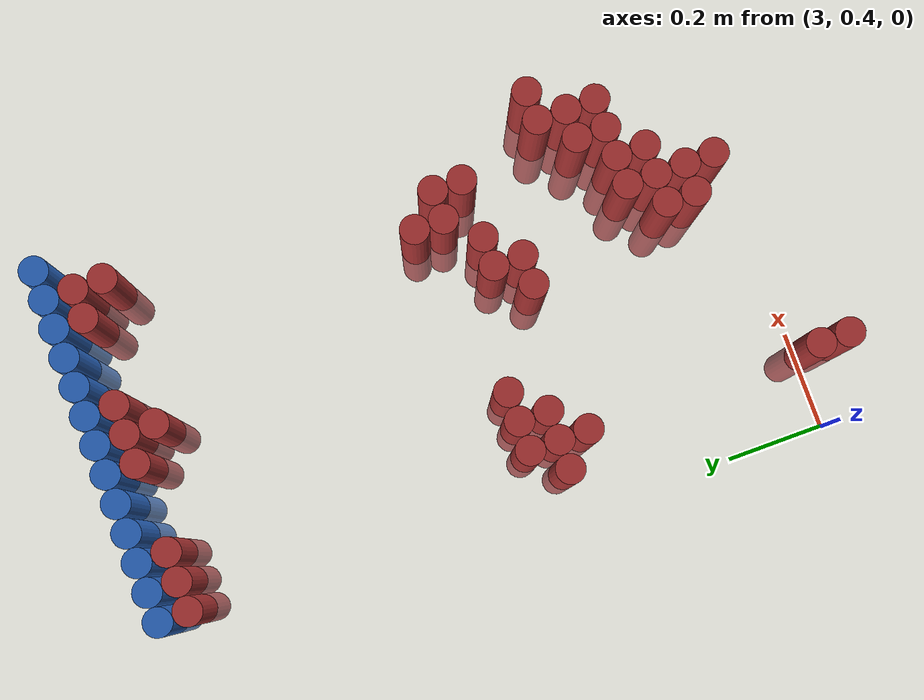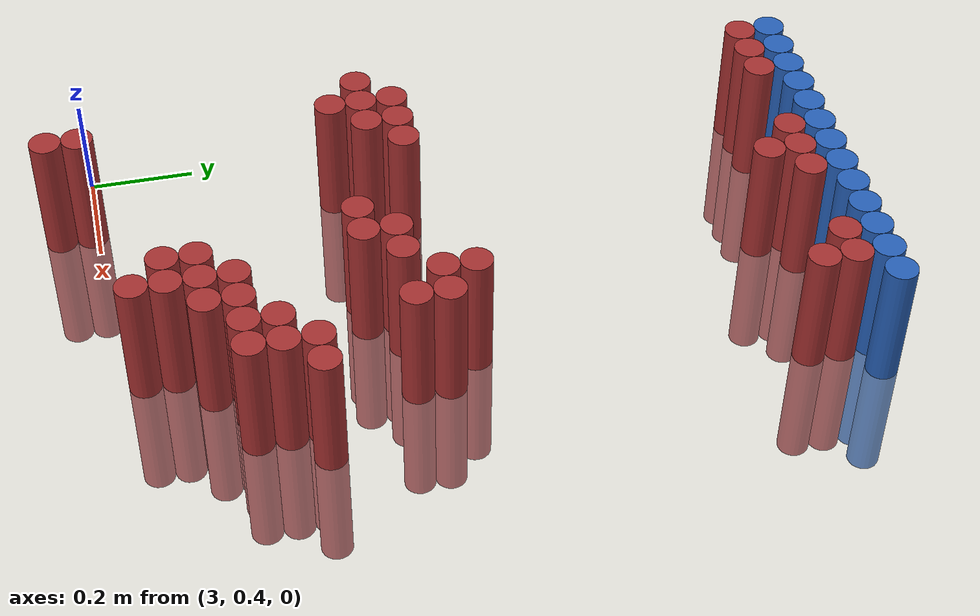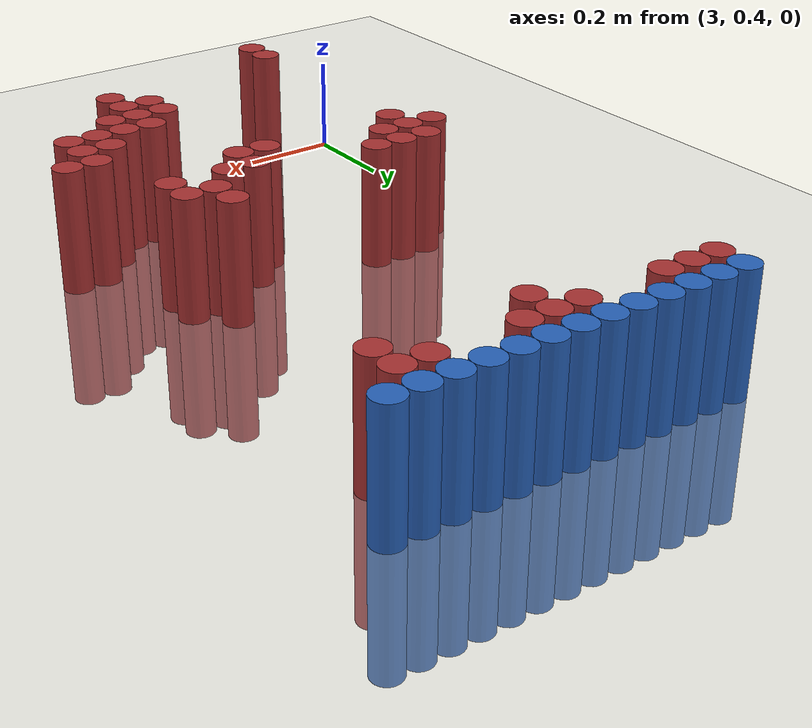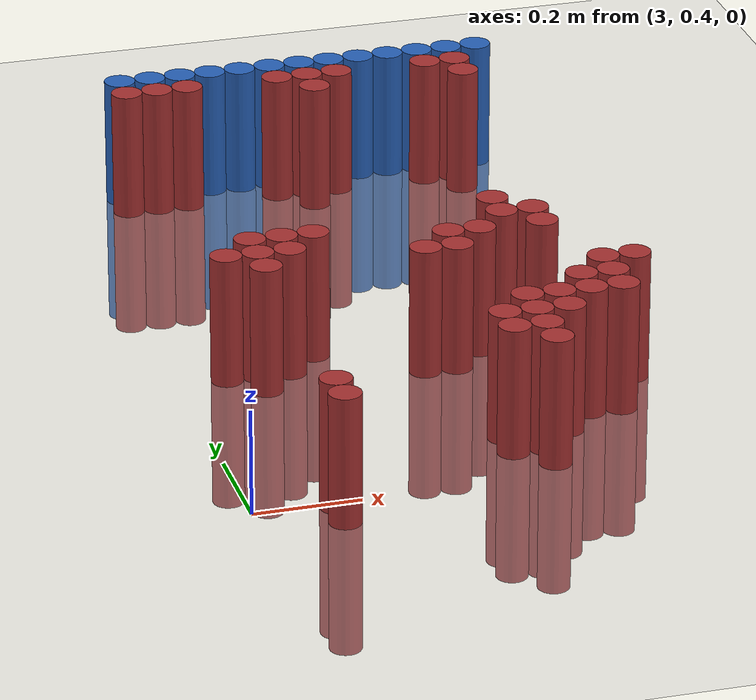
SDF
<sdf version="1.6">
 <world name="default">
  <model name="ground_plane">
   <static>1</static>
   <link name="link">
    <collision name="collision">
     <geometry><plane><normal>0 0 1</normal><size>100 100</size></plane></geometry>
     <surface><friction><ode><mu>100</mu><mu2>50</mu2></ode></friction></surface>
    </collision>
    <visual name="visual">
     <cast_shadows>0</cast_shadows>
     <geometry><plane><normal>0 0 1</normal><size>100 100</size></plane></geometry>
     <material>
      <script><uri>file://media/materials/scripts/gazebo.material</uri><name>Gazebo/Grey</name></script>
     </material>
    </visual>
   </link>
  </model>
  <model name="unit_cylinder_112">
   <static>1</static>
   <pose>3.090000 1.770000 0.000000 0.000000 0.000000 0.000000</pose>
   <link name="link">
    <inertial>
     <mass>1</mass>
     <inertia><ixx>0.145833</ixx><ixy>0</ixy><ixz>0</ixz><iyy>0.145833</iyy><iyz>0</iyz><izz>0.125</izz></inertia>
    </inertial>
    <collision name="collision">
     <geometry><cylinder><radius>0.030000</radius><length>0.5</length></cylinder></geometry>
    </collision>
    <visual name="visual">
     <geometry><cylinder><radius>0.030000</radius><length>0.5</length></cylinder></geometry>
     <material>
      <ambient>0.152000 0.379000 0.720000 1</ambient>
      <diffuse>0.152000 0.379000 0.720000 1</diffuse>
     </material>
     <material>
      <script><name>Gazebo/Grey</name><uri>file://media/materials/scripts/gazebo.material</uri></script>
     </material>
    </visual>
   </link>
  </model>
  <model name="unit_cylinder_113">
   <static>1</static>
   <pose>3.150000 1.770000 0.000000 0.000000 0.000000 0.000000</pose>
   <link name="link">
    <inertial>
     <mass>1</mass>
     <inertia><ixx>0.145833</ixx><ixy>0</ixy><ixz>0</ixz><iyy>0.145833</iyy><iyz>0</iyz><izz>0.125</izz></inertia>
    </inertial>
    <collision name="collision">
     <geometry><cylinder><radius>0.030000</radius><length>0.5</length></cylinder></geometry>
    </collision>
    <visual name="visual">
     <geometry><cylinder><radius>0.030000</radius><length>0.5</length></cylinder></geometry>
     <material>
      <ambient>0.152000 0.379000 0.720000 1</ambient>
      <diffuse>0.152000 0.379000 0.720000 1</diffuse>
     </material>
     <material>
      <script><name>Gazebo/Grey</name><uri>file://media/materials/scripts/gazebo.material</uri></script>
     </material>
    </visual>
   </link>
  </model>
  <model name="unit_cylinder_114">
   <static>1</static>
   <pose>3.210000 1.770000 0.000000 0.000000 0.000000 0.000000</pose>
   <link name="link">
    <inertial>
     <mass>1</mass>
     <inertia><ixx>0.145833</ixx><ixy>0</ixy><ixz>0</ixz><iyy>0.145833</iyy><iyz>0</iyz><izz>0.125</izz></inertia>
    </inertial>
    <collision name="collision">
     <geometry><cylinder><radius>0.030000</radius><length>0.5</length></cylinder></geometry>
    </collision>
    <visual name="visual">
     <geometry><cylinder><radius>0.030000</radius><length>0.5</length></cylinder></geometry>
     <material>
      <ambient>0.152000 0.379000 0.720000 1</ambient>
      <diffuse>0.152000 0.379000 0.720000 1</diffuse>
     </material>
     <material>
      <script><name>Gazebo/Grey</name><uri>file://media/materials/scripts/gazebo.material</uri></script>
     </material>
    </visual>
   </link>
  </model>
  <model name="unit_cylinder_115">
   <static>1</static>
   <pose>3.270000 1.770000 0.000000 0.000000 0.000000 0.000000</pose>
   <link name="link">
    <inertial>
     <mass>1</mass>
     <inertia><ixx>0.145833</ixx><ixy>0</ixy><ixz>0</ixz><iyy>0.145833</iyy><iyz>0</iyz><izz>0.125</izz></inertia>
    </inertial>
    <collision name="collision">
     <geometry><cylinder><radius>0.030000</radius><length>0.5</length></cylinder></geometry>
    </collision>
    <visual name="visual">
     <geometry><cylinder><radius>0.030000</radius><length>0.5</length></cylinder></geometry>
     <material>
      <ambient>0.152000 0.379000 0.720000 1</ambient>
      <diffuse>0.152000 0.379000 0.720000 1</diffuse>
     </material>
     <material>
      <script><name>Gazebo/Grey</name><uri>file://media/materials/scripts/gazebo.material</uri></script>
     </material>
    </visual>
   </link>
  </model>
  <model name="unit_cylinder_116">
   <static>1</static>
   <pose>3.330000 1.770000 0.000000 0.000000 0.000000 0.000000</pose>
   <link name="link">
    <inertial>
     <mass>1</mass>
     <inertia><ixx>0.145833</ixx><ixy>0</ixy><ixz>0</ixz><iyy>0.145833</iyy><iyz>0</iyz><izz>0.125</izz></inertia>
    </inertial>
    <collision name="collision">
     <geometry><cylinder><radius>0.030000</radius><length>0.5</length></cylinder></geometry>
    </collision>
    <visual name="visual">
     <geometry><cylinder><radius>0.030000</radius><length>0.5</length></cylinder></geometry>
     <material>
      <ambient>0.152000 0.379000 0.720000 1</ambient>
      <diffuse>0.152000 0.379000 0.720000 1</diffuse>
     </material>
     <material>
      <script><name>Gazebo/Grey</name><uri>file://media/materials/scripts/gazebo.material</uri></script>
     </material>
    </visual>
   </link>
  </model>
  <model name="unit_cylinder_117">
   <static>1</static>
   <pose>3.390000 1.770000 0.000000 0.000000 0.000000 0.000000</pose>
   <link name="link">
    <inertial>
     <mass>1</mass>
     <inertia><ixx>0.145833</ixx><ixy>0</ixy><ixz>0</ixz><iyy>0.145833</iyy><iyz>0</iyz><izz>0.125</izz></inertia>
    </inertial>
    <collision name="collision">
     <geometry><cylinder><radius>0.030000</radius><length>0.5</length></cylinder></geometry>
    </collision>
    <visual name="visual">
     <geometry><cylinder><radius>0.030000</radius><length>0.5</length></cylinder></geometry>
     <material>
      <ambient>0.152000 0.379000 0.720000 1</ambient>
      <diffuse>0.152000 0.379000 0.720000 1</diffuse>
     </material>
     <material>
      <script><name>Gazebo/Grey</name><uri>file://media/materials/scripts/gazebo.material</uri></script>
     </material>
    </visual>
   </link>
  </model>
  <model name="unit_cylinder_118">
   <static>1</static>
   <pose>3.450000 1.770000 0.000000 0.000000 0.000000 0.000000</pose>
   <link name="link">
    <inertial>
     <mass>1</mass>
     <inertia><ixx>0.145833</ixx><ixy>0</ixy><ixz>0</ixz><iyy>0.145833</iyy><iyz>0</iyz><izz>0.125</izz></inertia>
    </inertial>
    <collision name="collision">
     <geometry><cylinder><radius>0.030000</radius><length>0.5</length></cylinder></geometry>
    </collision>
    <visual name="visual">
     <geometry><cylinder><radius>0.030000</radius><length>0.5</length></cylinder></geometry>
     <material>
      <ambient>0.152000 0.379000 0.720000 1</ambient>
      <diffuse>0.152000 0.379000 0.720000 1</diffuse>
     </material>
     <material>
      <script><name>Gazebo/Grey</name><uri>file://media/materials/scripts/gazebo.material</uri></script>
     </material>
    </visual>
   </link>
  </model>
  <model name="unit_cylinder_119">
   <static>1</static>
   <pose>3.510000 1.770000 0.000000 0.000000 0.000000 0.000000</pose>
   <link name="link">
    <inertial>
     <mass>1</mass>
     <inertia><ixx>0.145833</ixx><ixy>0</ixy><ixz>0</ixz><iyy>0.145833</iyy><iyz>0</iyz><izz>0.125</izz></inertia>
    </inertial>
    <collision name="collision">
     <geometry><cylinder><radius>0.030000</radius><length>0.5</length></cylinder></geometry>
    </collision>
    <visual name="visual">
     <geometry><cylinder><radius>0.030000</radius><length>0.5</length></cylinder></geometry>
     <material>
      <ambient>0.152000 0.379000 0.720000 1</ambient>
      <diffuse>0.152000 0.379000 0.720000 1</diffuse>
     </material>
     <material>
      <script><name>Gazebo/Grey</name><uri>file://media/materials/scripts/gazebo.material</uri></script>
     </material>
    </visual>
   </link>
  </model>
  <model name="unit_cylinder_120">
   <static>1</static>
   <pose>3.570000 1.770000 0.000000 0.000000 0.000000 0.000000</pose>
   <link name="link">
    <inertial>
     <mass>1</mass>
     <inertia><ixx>0.145833</ixx><ixy>0</ixy><ixz>0</ixz><iyy>0.145833</iyy><iyz>0</iyz><izz>0.125</izz></inertia>
    </inertial>
    <collision name="collision">
     <geometry><cylinder><radius>0.030000</radius><length>0.5</length></cylinder></geometry>
    </collision>
    <visual name="visual">
     <geometry><cylinder><radius>0.030000</radius><length>0.5</length></cylinder></geometry>
     <material>
      <ambient>0.152000 0.379000 0.720000 1</ambient>
      <diffuse>0.152000 0.379000 0.720000 1</diffuse>
     </material>
     <material>
      <script><name>Gazebo/Grey</name><uri>file://media/materials/scripts/gazebo.material</uri></script>
     </material>
    </visual>
   </link>
  </model>
  <model name="unit_cylinder_121">
   <static>1</static>
   <pose>3.630000 1.770000 0.000000 0.000000 0.000000 0.000000</pose>
   <link name="link">
    <inertial>
     <mass>1</mass>
     <inertia><ixx>0.145833</ixx><ixy>0</ixy><ixz>0</ixz><iyy>0.145833</iyy><iyz>0</iyz><izz>0.125</izz></inertia>
    </inertial>
    <collision name="collision">
     <geometry><cylinder><radius>0.030000</radius><length>0.5</length></cylinder></geometry>
    </collision>
    <visual name="visual">
     <geometry><cylinder><radius>0.030000</radius><length>0.5</length></cylinder></geometry>
     <material>
      <ambient>0.152000 0.379000 0.720000 1</ambient>
      <diffuse>0.152000 0.379000 0.720000 1</diffuse>
     </material>
     <material>
      <script><name>Gazebo/Grey</name><uri>file://media/materials/scripts/gazebo.material</uri></script>
     </material>
    </visual>
   </link>
  </model>
  <model name="unit_cylinder_122">
   <static>1</static>
   <pose>3.690000 1.770000 0.000000 0.000000 0.000000 0.000000</pose>
   <link name="link">
    <inertial>
     <mass>1</mass>
     <inertia><ixx>0.145833</ixx><ixy>0</ixy><ixz>0</ixz><iyy>0.145833</iyy><iyz>0</iyz><izz>0.125</izz></inertia>
    </inertial>
    <collision name="collision">
     <geometry><cylinder><radius>0.030000</radius><length>0.5</length></cylinder></geometry>
    </collision>
    <visual name="visual">
     <geometry><cylinder><radius>0.030000</radius><length>0.5</length></cylinder></geometry>
     <material>
      <ambient>0.152000 0.379000 0.720000 1</ambient>
      <diffuse>0.152000 0.379000 0.720000 1</diffuse>
     </material>
     <material>
      <script><name>Gazebo/Grey</name><uri>file://media/materials/scripts/gazebo.material</uri></script>
     </material>
    </visual>
   </link>
  </model>
  <model name="unit_cylinder_123">
   <static>1</static>
   <pose>3.750000 1.770000 0.000000 0.000000 0.000000 0.000000</pose>
   <link name="link">
    <inertial>
     <mass>1</mass>
     <inertia><ixx>0.145833</ixx><ixy>0</ixy><ixz>0</ixz><iyy>0.145833</iyy><iyz>0</iyz><izz>0.125</izz></inertia>
    </inertial>
    <collision name="collision">
     <geometry><cylinder><radius>0.030000</radius><length>0.5</length></cylinder></geometry>
    </collision>
    <visual name="visual">
     <geometry><cylinder><radius>0.030000</radius><length>0.5</length></cylinder></geometry>
     <material>
      <ambient>0.152000 0.379000 0.720000 1</ambient>
      <diffuse>0.152000 0.379000 0.720000 1</diffuse>
     </material>
     <material>
      <script><name>Gazebo/Grey</name><uri>file://media/materials/scripts/gazebo.material</uri></script>
     </material>
    </visual>
   </link>
  </model>
  <model name="unit_cylinder_124">
   <static>1</static>
   <pose>3.810000 1.770000 0.000000 0.000000 0.000000 0.000000</pose>
   <link name="link">
    <inertial>
     <mass>1</mass>
     <inertia><ixx>0.145833</ixx><ixy>0</ixy><ixz>0</ixz><iyy>0.145833</iyy><iyz>0</iyz><izz>0.125</izz></inertia>
    </inertial>
    <collision name="collision">
     <geometry><cylinder><radius>0.030000</radius><length>0.5</length></cylinder></geometry>
    </collision>
    <visual name="visual">
     <geometry><cylinder><radius>0.030000</radius><length>0.5</length></cylinder></geometry>
     <material>
      <ambient>0.152000 0.379000 0.720000 1</ambient>
      <diffuse>0.152000 0.379000 0.720000 1</diffuse>
     </material>
     <material>
      <script><name>Gazebo/Grey</name><uri>file://media/materials/scripts/gazebo.material</uri></script>
     </material>
    </visual>
   </link>
  </model>
  <model name="unit_cylinder_134">
   <static>1</static>
   <pose>3.090000 1.710000 0.000000 0.000000 0.000000 0.000000</pose>
   <link name="link">
    <inertial>
     <mass>1</mass>
     <inertia><ixx>0.145833</ixx><ixy>0</ixy><ixz>0</ixz><iyy>0.145833</iyy><iyz>0</iyz><izz>0.125</izz></inertia>
    </inertial>
    <collision name="collision">
     <geometry><cylinder><radius>0.030000</radius><length>0.5</length></cylinder></geometry>
    </collision>
    <visual name="visual">
     <geometry><cylinder><radius>0.030000</radius><length>0.5</length></cylinder></geometry>
     <material>
      <ambient>0.648000 0.192000 0.192000 1</ambient>
      <diffuse>0.648000 0.192000 0.192000 1</diffuse>
     </material>
     <material>
      <script><name>Gazebo/Grey</name><uri>file://media/materials/scripts/gazebo.material</uri></script>
     </material>
    </visual>
   </link>
  </model>
  <model name="unit_cylinder_135">
   <static>1</static>
   <pose>3.150000 1.710000 0.000000 0.000000 0.000000 0.000000</pose>
   <link name="link">
    <inertial>
     <mass>1</mass>
     <inertia><ixx>0.145833</ixx><ixy>0</ixy><ixz>0</ixz><iyy>0.145833</iyy><iyz>0</iyz><izz>0.125</izz></inertia>
    </inertial>
    <collision name="collision">
     <geometry><cylinder><radius>0.030000</radius><length>0.5</length></cylinder></geometry>
    </collision>
    <visual name="visual">
     <geometry><cylinder><radius>0.030000</radius><length>0.5</length></cylinder></geometry>
     <material>
      <ambient>0.648000 0.192000 0.192000 1</ambient>
      <diffuse>0.648000 0.192000 0.192000 1</diffuse>
     </material>
     <material>
      <script><name>Gazebo/Grey</name><uri>file://media/materials/scripts/gazebo.material</uri></script>
     </material>
    </visual>
   </link>
  </model>
  <model name="unit_cylinder_136">
   <static>1</static>
   <pose>3.210000 1.710000 0.000000 0.000000 0.000000 0.000000</pose>
   <link name="link">
    <inertial>
     <mass>1</mass>
     <inertia><ixx>0.145833</ixx><ixy>0</ixy><ixz>0</ixz><iyy>0.145833</iyy><iyz>0</iyz><izz>0.125</izz></inertia>
    </inertial>
    <collision name="collision">
     <geometry><cylinder><radius>0.030000</radius><length>0.5</length></cylinder></geometry>
    </collision>
    <visual name="visual">
     <geometry><cylinder><radius>0.030000</radius><length>0.5</length></cylinder></geometry>
     <material>
      <ambient>0.648000 0.192000 0.192000 1</ambient>
      <diffuse>0.648000 0.192000 0.192000 1</diffuse>
     </material>
     <material>
      <script><name>Gazebo/Grey</name><uri>file://media/materials/scripts/gazebo.material</uri></script>
     </material>
    </visual>
   </link>
  </model>
  <model name="unit_cylinder_137">
   <static>1</static>
   <pose>3.390000 1.710000 0.000000 0.000000 0.000000 0.000000</pose>
   <link name="link">
    <inertial>
     <mass>1</mass>
     <inertia><ixx>0.145833</ixx><ixy>0</ixy><ixz>0</ixz><iyy>0.145833</iyy><iyz>0</iyz><izz>0.125</izz></inertia>
    </inertial>
    <collision name="collision">
     <geometry><cylinder><radius>0.030000</radius><length>0.5</length></cylinder></geometry>
    </collision>
    <visual name="visual">
     <geometry><cylinder><radius>0.030000</radius><length>0.5</length></cylinder></geometry>
     <material>
      <ambient>0.648000 0.192000 0.192000 1</ambient>
      <diffuse>0.648000 0.192000 0.192000 1</diffuse>
     </material>
     <material>
      <script><name>Gazebo/Grey</name><uri>file://media/materials/scripts/gazebo.material</uri></script>
     </material>
    </visual>
   </link>
  </model>
  <model name="unit_cylinder_138">
   <static>1</static>
   <pose>3.450000 1.710000 0.000000 0.000000 0.000000 0.000000</pose>
   <link name="link">
    <inertial>
     <mass>1</mass>
     <inertia><ixx>0.145833</ixx><ixy>0</ixy><ixz>0</ixz><iyy>0.145833</iyy><iyz>0</iyz><izz>0.125</izz></inertia>
    </inertial>
    <collision name="collision">
     <geometry><cylinder><radius>0.030000</radius><length>0.5</length></cylinder></geometry>
    </collision>
    <visual name="visual">
     <geometry><cylinder><radius>0.030000</radius><length>0.5</length></cylinder></geometry>
     <material>
      <ambient>0.648000 0.192000 0.192000 1</ambient>
      <diffuse>0.648000 0.192000 0.192000 1</diffuse>
     </material>
     <material>
      <script><name>Gazebo/Grey</name><uri>file://media/materials/scripts/gazebo.material</uri></script>
     </material>
    </visual>
   </link>
  </model>
  <model name="unit_cylinder_139">
   <static>1</static>
   <pose>3.510000 1.710000 0.000000 0.000000 0.000000 0.000000</pose>
   <link name="link">
    <inertial>
     <mass>1</mass>
     <inertia><ixx>0.145833</ixx><ixy>0</ixy><ixz>0</ixz><iyy>0.145833</iyy><iyz>0</iyz><izz>0.125</izz></inertia>
    </inertial>
    <collision name="collision">
     <geometry><cylinder><radius>0.030000</radius><length>0.5</length></cylinder></geometry>
    </collision>
    <visual name="visual">
     <geometry><cylinder><radius>0.030000</radius><length>0.5</length></cylinder></geometry>
     <material>
      <ambient>0.648000 0.192000 0.192000 1</ambient>
      <diffuse>0.648000 0.192000 0.192000 1</diffuse>
     </material>
     <material>
      <script><name>Gazebo/Grey</name><uri>file://media/materials/scripts/gazebo.material</uri></script>
     </material>
    </visual>
   </link>
  </model>
  <model name="unit_cylinder_140">
   <static>1</static>
   <pose>3.690000 1.710000 0.000000 0.000000 0.000000 0.000000</pose>
   <link name="link">
    <inertial>
     <mass>1</mass>
     <inertia><ixx>0.145833</ixx><ixy>0</ixy><ixz>0</ixz><iyy>0.145833</iyy><iyz>0</iyz><izz>0.125</izz></inertia>
    </inertial>
    <collision name="collision">
     <geometry><cylinder><radius>0.030000</radius><length>0.5</length></cylinder></geometry>
    </collision>
    <visual name="visual">
     <geometry><cylinder><radius>0.030000</radius><length>0.5</length></cylinder></geometry>
     <material>
      <ambient>0.648000 0.192000 0.192000 1</ambient>
      <diffuse>0.648000 0.192000 0.192000 1</diffuse>
     </material>
     <material>
      <script><name>Gazebo/Grey</name><uri>file://media/materials/scripts/gazebo.material</uri></script>
     </material>
    </visual>
   </link>
  </model>
  <model name="unit_cylinder_141">
   <static>1</static>
   <pose>3.750000 1.710000 0.000000 0.000000 0.000000 0.000000</pose>
   <link name="link">
    <inertial>
     <mass>1</mass>
     <inertia><ixx>0.145833</ixx><ixy>0</ixy><ixz>0</ixz><iyy>0.145833</iyy><iyz>0</iyz><izz>0.125</izz></inertia>
    </inertial>
    <collision name="collision">
     <geometry><cylinder><radius>0.030000</radius><length>0.5</length></cylinder></geometry>
    </collision>
    <visual name="visual">
     <geometry><cylinder><radius>0.030000</radius><length>0.5</length></cylinder></geometry>
     <material>
      <ambient>0.648000 0.192000 0.192000 1</ambient>
      <diffuse>0.648000 0.192000 0.192000 1</diffuse>
     </material>
     <material>
      <script><name>Gazebo/Grey</name><uri>file://media/materials/scripts/gazebo.material</uri></script>
     </material>
    </visual>
   </link>
  </model>
  <model name="unit_cylinder_144">
   <static>1</static>
   <pose>3.450000 1.650000 0.000000 0.000000 0.000000 0.000000</pose>
   <link name="link">
    <inertial>
     <mass>1</mass>
     <inertia><ixx>0.145833</ixx><ixy>0</ixy><ixz>0</ixz><iyy>0.145833</iyy><iyz>0</iyz><izz>0.125</izz></inertia>
    </inertial>
    <collision name="collision">
     <geometry><cylinder><radius>0.030000</radius><length>0.5</length></cylinder></geometry>
    </collision>
    <visual name="visual">
     <geometry><cylinder><radius>0.030000</radius><length>0.5</length></cylinder></geometry>
     <material>
      <ambient>0.648000 0.192000 0.192000 1</ambient>
      <diffuse>0.648000 0.192000 0.192000 1</diffuse>
     </material>
     <material>
      <script><name>Gazebo/Grey</name><uri>file://media/materials/scripts/gazebo.material</uri></script>
     </material>
    </visual>
   </link>
  </model>
  <model name="unit_cylinder_145">
   <static>1</static>
   <pose>3.750000 1.650000 0.000000 0.000000 0.000000 0.000000</pose>
   <link name="link">
    <inertial>
     <mass>1</mass>
     <inertia><ixx>0.145833</ixx><ixy>0</ixy><ixz>0</ixz><iyy>0.145833</iyy><iyz>0</iyz><izz>0.125</izz></inertia>
    </inertial>
    <collision name="collision">
     <geometry><cylinder><radius>0.030000</radius><length>0.5</length></cylinder></geometry>
    </collision>
    <visual name="visual">
     <geometry><cylinder><radius>0.030000</radius><length>0.5</length></cylinder></geometry>
     <material>
      <ambient>0.648000 0.192000 0.192000 1</ambient>
      <diffuse>0.648000 0.192000 0.192000 1</diffuse>
     </material>
     <material>
      <script><name>Gazebo/Grey</name><uri>file://media/materials/scripts/gazebo.material</uri></script>
     </material>
    </visual>
   </link>
  </model>
  <model name="unit_cylinder_161">
   <static>1</static>
   <pose>3.630000 1.050000 0.000000 0.000000 0.000000 0.000000</pose>
   <link name="link">
    <inertial>
     <mass>1</mass>
     <inertia><ixx>0.145833</ixx><ixy>0</ixy><ixz>0</ixz><iyy>0.145833</iyy><iyz>0</iyz><izz>0.125</izz></inertia>
    </inertial>
    <collision name="collision">
     <geometry><cylinder><radius>0.030000</radius><length>0.5</length></cylinder></geometry>
    </collision>
    <visual name="visual">
     <geometry><cylinder><radius>0.030000</radius><length>0.5</length></cylinder></geometry>
     <material>
      <ambient>0.648000 0.192000 0.192000 1</ambient>
      <diffuse>0.648000 0.192000 0.192000 1</diffuse>
     </material>
     <material>
      <script><name>Gazebo/Grey</name><uri>file://media/materials/scripts/gazebo.material</uri></script>
     </material>
    </visual>
   </link>
  </model>
  <model name="unit_cylinder_163">
   <static>1</static>
   <pose>3.150000 0.990000 0.000000 0.000000 0.000000 0.000000</pose>
   <link name="link">
    <inertial>
     <mass>1</mass>
     <inertia><ixx>0.145833</ixx><ixy>0</ixy><ixz>0</ixz><iyy>0.145833</iyy><iyz>0</iyz><izz>0.125</izz></inertia>
    </inertial>
    <collision name="collision">
     <geometry><cylinder><radius>0.030000</radius><length>0.5</length></cylinder></geometry>
    </collision>
    <visual name="visual">
     <geometry><cylinder><radius>0.030000</radius><length>0.5</length></cylinder></geometry>
     <material>
      <ambient>0.648000 0.192000 0.192000 1</ambient>
      <diffuse>0.648000 0.192000 0.192000 1</diffuse>
     </material>
     <material>
      <script><name>Gazebo/Grey</name><uri>file://media/materials/scripts/gazebo.material</uri></script>
     </material>
    </visual>
   </link>
  </model>
  <model name="unit_cylinder_164">
   <static>1</static>
   <pose>3.210000 0.990000 0.000000 0.000000 0.000000 0.000000</pose>
   <link name="link">
    <inertial>
     <mass>1</mass>
     <inertia><ixx>0.145833</ixx><ixy>0</ixy><ixz>0</ixz><iyy>0.145833</iyy><iyz>0</iyz><izz>0.125</izz></inertia>
    </inertial>
    <collision name="collision">
     <geometry><cylinder><radius>0.030000</radius><length>0.5</length></cylinder></geometry>
    </collision>
    <visual name="visual">
     <geometry><cylinder><radius>0.030000</radius><length>0.5</length></cylinder></geometry>
     <material>
      <ambient>0.648000 0.192000 0.192000 1</ambient>
      <diffuse>0.648000 0.192000 0.192000 1</diffuse>
     </material>
     <material>
      <script><name>Gazebo/Grey</name><uri>file://media/materials/scripts/gazebo.material</uri></script>
     </material>
    </visual>
   </link>
  </model>
  <model name="unit_cylinder_165">
   <static>1</static>
   <pose>3.270000 0.990000 0.000000 0.000000 0.000000 0.000000</pose>
   <link name="link">
    <inertial>
     <mass>1</mass>
     <inertia><ixx>0.145833</ixx><ixy>0</ixy><ixz>0</ixz><iyy>0.145833</iyy><iyz>0</iyz><izz>0.125</izz></inertia>
    </inertial>
    <collision name="collision">
     <geometry><cylinder><radius>0.030000</radius><length>0.5</length></cylinder></geometry>
    </collision>
    <visual name="visual">
     <geometry><cylinder><radius>0.030000</radius><length>0.5</length></cylinder></geometry>
     <material>
      <ambient>0.648000 0.192000 0.192000 1</ambient>
      <diffuse>0.648000 0.192000 0.192000 1</diffuse>
     </material>
     <material>
      <script><name>Gazebo/Grey</name><uri>file://media/materials/scripts/gazebo.material</uri></script>
     </material>
    </visual>
   </link>
  </model>
  <model name="unit_cylinder_166">
   <static>1</static>
   <pose>3.630000 0.990000 0.000000 0.000000 0.000000 0.000000</pose>
   <link name="link">
    <inertial>
     <mass>1</mass>
     <inertia><ixx>0.145833</ixx><ixy>0</ixy><ixz>0</ixz><iyy>0.145833</iyy><iyz>0</iyz><izz>0.125</izz></inertia>
    </inertial>
    <collision name="collision">
     <geometry><cylinder><radius>0.030000</radius><length>0.5</length></cylinder></geometry>
    </collision>
    <visual name="visual">
     <geometry><cylinder><radius>0.030000</radius><length>0.5</length></cylinder></geometry>
     <material>
      <ambient>0.648000 0.192000 0.192000 1</ambient>
      <diffuse>0.648000 0.192000 0.192000 1</diffuse>
     </material>
     <material>
      <script><name>Gazebo/Grey</name><uri>file://media/materials/scripts/gazebo.material</uri></script>
     </material>
    </visual>
   </link>
  </model>
  <model name="unit_cylinder_167">
   <static>1</static>
   <pose>3.690000 0.990000 0.000000 0.000000 0.000000 0.000000</pose>
   <link name="link">
    <inertial>
     <mass>1</mass>
     <inertia><ixx>0.145833</ixx><ixy>0</ixy><ixz>0</ixz><iyy>0.145833</iyy><iyz>0</iyz><izz>0.125</izz></inertia>
    </inertial>
    <collision name="collision">
     <geometry><cylinder><radius>0.030000</radius><length>0.5</length></cylinder></geometry>
    </collision>
    <visual name="visual">
     <geometry><cylinder><radius>0.030000</radius><length>0.5</length></cylinder></geometry>
     <material>
      <ambient>0.648000 0.192000 0.192000 1</ambient>
      <diffuse>0.648000 0.192000 0.192000 1</diffuse>
     </material>
     <material>
      <script><name>Gazebo/Grey</name><uri>file://media/materials/scripts/gazebo.material</uri></script>
     </material>
    </visual>
   </link>
  </model>
  <model name="unit_cylinder_169">
   <static>1</static>
   <pose>3.090000 0.930000 0.000000 0.000000 0.000000 0.000000</pose>
   <link name="link">
    <inertial>
     <mass>1</mass>
     <inertia><ixx>0.145833</ixx><ixy>0</ixy><ixz>0</ixz><iyy>0.145833</iyy><iyz>0</iyz><izz>0.125</izz></inertia>
    </inertial>
    <collision name="collision">
     <geometry><cylinder><radius>0.030000</radius><length>0.5</length></cylinder></geometry>
    </collision>
    <visual name="visual">
     <geometry><cylinder><radius>0.030000</radius><length>0.5</length></cylinder></geometry>
     <material>
      <ambient>0.648000 0.192000 0.192000 1</ambient>
      <diffuse>0.648000 0.192000 0.192000 1</diffuse>
     </material>
     <material>
      <script><name>Gazebo/Grey</name><uri>file://media/materials/scripts/gazebo.material</uri></script>
     </material>
    </visual>
   </link>
  </model>
  <model name="unit_cylinder_170">
   <static>1</static>
   <pose>3.150000 0.930000 0.000000 0.000000 0.000000 0.000000</pose>
   <link name="link">
    <inertial>
     <mass>1</mass>
     <inertia><ixx>0.145833</ixx><ixy>0</ixy><ixz>0</ixz><iyy>0.145833</iyy><iyz>0</iyz><izz>0.125</izz></inertia>
    </inertial>
    <collision name="collision">
     <geometry><cylinder><radius>0.030000</radius><length>0.5</length></cylinder></geometry>
    </collision>
    <visual name="visual">
     <geometry><cylinder><radius>0.030000</radius><length>0.5</length></cylinder></geometry>
     <material>
      <ambient>0.648000 0.192000 0.192000 1</ambient>
      <diffuse>0.648000 0.192000 0.192000 1</diffuse>
     </material>
     <material>
      <script><name>Gazebo/Grey</name><uri>file://media/materials/scripts/gazebo.material</uri></script>
     </material>
    </visual>
   </link>
  </model>
  <model name="unit_cylinder_171">
   <static>1</static>
   <pose>3.210000 0.930000 0.000000 0.000000 0.000000 0.000000</pose>
   <link name="link">
    <inertial>
     <mass>1</mass>
     <inertia><ixx>0.145833</ixx><ixy>0</ixy><ixz>0</ixz><iyy>0.145833</iyy><iyz>0</iyz><izz>0.125</izz></inertia>
    </inertial>
    <collision name="collision">
     <geometry><cylinder><radius>0.030000</radius><length>0.5</length></cylinder></geometry>
    </collision>
    <visual name="visual">
     <geometry><cylinder><radius>0.030000</radius><length>0.5</length></cylinder></geometry>
     <material>
      <ambient>0.648000 0.192000 0.192000 1</ambient>
      <diffuse>0.648000 0.192000 0.192000 1</diffuse>
     </material>
     <material>
      <script><name>Gazebo/Grey</name><uri>file://media/materials/scripts/gazebo.material</uri></script>
     </material>
    </visual>
   </link>
  </model>
  <model name="unit_cylinder_172">
   <static>1</static>
   <pose>3.510000 0.930000 0.000000 0.000000 0.000000 0.000000</pose>
   <link name="link">
    <inertial>
     <mass>1</mass>
     <inertia><ixx>0.145833</ixx><ixy>0</ixy><ixz>0</ixz><iyy>0.145833</iyy><iyz>0</iyz><izz>0.125</izz></inertia>
    </inertial>
    <collision name="collision">
     <geometry><cylinder><radius>0.030000</radius><length>0.5</length></cylinder></geometry>
    </collision>
    <visual name="visual">
     <geometry><cylinder><radius>0.030000</radius><length>0.5</length></cylinder></geometry>
     <material>
      <ambient>0.648000 0.192000 0.192000 1</ambient>
      <diffuse>0.648000 0.192000 0.192000 1</diffuse>
     </material>
     <material>
      <script><name>Gazebo/Grey</name><uri>file://media/materials/scripts/gazebo.material</uri></script>
     </material>
    </visual>
   </link>
  </model>
  <model name="unit_cylinder_173">
   <static>1</static>
   <pose>3.570000 0.930000 0.000000 0.000000 0.000000 0.000000</pose>
   <link name="link">
    <inertial>
     <mass>1</mass>
     <inertia><ixx>0.145833</ixx><ixy>0</ixy><ixz>0</ixz><iyy>0.145833</iyy><iyz>0</iyz><izz>0.125</izz></inertia>
    </inertial>
    <collision name="collision">
     <geometry><cylinder><radius>0.030000</radius><length>0.5</length></cylinder></geometry>
    </collision>
    <visual name="visual">
     <geometry><cylinder><radius>0.030000</radius><length>0.5</length></cylinder></geometry>
     <material>
      <ambient>0.648000 0.192000 0.192000 1</ambient>
      <diffuse>0.648000 0.192000 0.192000 1</diffuse>
     </material>
     <material>
      <script><name>Gazebo/Grey</name><uri>file://media/materials/scripts/gazebo.material</uri></script>
     </material>
    </visual>
   </link>
  </model>
  <model name="unit_cylinder_174">
   <static>1</static>
   <pose>3.690000 0.930000 0.000000 0.000000 0.000000 0.000000</pose>
   <link name="link">
    <inertial>
     <mass>1</mass>
     <inertia><ixx>0.145833</ixx><ixy>0</ixy><ixz>0</ixz><iyy>0.145833</iyy><iyz>0</iyz><izz>0.125</izz></inertia>
    </inertial>
    <collision name="collision">
     <geometry><cylinder><radius>0.030000</radius><length>0.5</length></cylinder></geometry>
    </collision>
    <visual name="visual">
     <geometry><cylinder><radius>0.030000</radius><length>0.5</length></cylinder></geometry>
     <material>
      <ambient>0.648000 0.192000 0.192000 1</ambient>
      <diffuse>0.648000 0.192000 0.192000 1</diffuse>
     </material>
     <material>
      <script><name>Gazebo/Grey</name><uri>file://media/materials/scripts/gazebo.material</uri></script>
     </material>
    </visual>
   </link>
  </model>
  <model name="unit_cylinder_176">
   <static>1</static>
   <pose>3.150000 0.870000 0.000000 0.000000 0.000000 0.000000</pose>
   <link name="link">
    <inertial>
     <mass>1</mass>
     <inertia><ixx>0.145833</ixx><ixy>0</ixy><ixz>0</ixz><iyy>0.145833</iyy><iyz>0</iyz><izz>0.125</izz></inertia>
    </inertial>
    <collision name="collision">
     <geometry><cylinder><radius>0.030000</radius><length>0.5</length></cylinder></geometry>
    </collision>
    <visual name="visual">
     <geometry><cylinder><radius>0.030000</radius><length>0.5</length></cylinder></geometry>
     <material>
      <ambient>0.648000 0.192000 0.192000 1</ambient>
      <diffuse>0.648000 0.192000 0.192000 1</diffuse>
     </material>
     <material>
      <script><name>Gazebo/Grey</name><uri>file://media/materials/scripts/gazebo.material</uri></script>
     </material>
    </visual>
   </link>
  </model>
  <model name="unit_cylinder_177">
   <static>1</static>
   <pose>3.450000 0.870000 0.000000 0.000000 0.000000 0.000000</pose>
   <link name="link">
    <inertial>
     <mass>1</mass>
     <inertia><ixx>0.145833</ixx><ixy>0</ixy><ixz>0</ixz><iyy>0.145833</iyy><iyz>0</iyz><izz>0.125</izz></inertia>
    </inertial>
    <collision name="collision">
     <geometry><cylinder><radius>0.030000</radius><length>0.5</length></cylinder></geometry>
    </collision>
    <visual name="visual">
     <geometry><cylinder><radius>0.030000</radius><length>0.5</length></cylinder></geometry>
     <material>
      <ambient>0.648000 0.192000 0.192000 1</ambient>
      <diffuse>0.648000 0.192000 0.192000 1</diffuse>
     </material>
     <material>
      <script><name>Gazebo/Grey</name><uri>file://media/materials/scripts/gazebo.material</uri></script>
     </material>
    </visual>
   </link>
  </model>
  <model name="unit_cylinder_178">
   <static>1</static>
   <pose>3.510000 0.870000 0.000000 0.000000 0.000000 0.000000</pose>
   <link name="link">
    <inertial>
     <mass>1</mass>
     <inertia><ixx>0.145833</ixx><ixy>0</ixy><ixz>0</ixz><iyy>0.145833</iyy><iyz>0</iyz><izz>0.125</izz></inertia>
    </inertial>
    <collision name="collision">
     <geometry><cylinder><radius>0.030000</radius><length>0.5</length></cylinder></geometry>
    </collision>
    <visual name="visual">
     <geometry><cylinder><radius>0.030000</radius><length>0.5</length></cylinder></geometry>
     <material>
      <ambient>0.648000 0.192000 0.192000 1</ambient>
      <diffuse>0.648000 0.192000 0.192000 1</diffuse>
     </material>
     <material>
      <script><name>Gazebo/Grey</name><uri>file://media/materials/scripts/gazebo.material</uri></script>
     </material>
    </visual>
   </link>
  </model>
  <model name="unit_cylinder_182">
   <static>1</static>
   <pose>3.750000 0.750000 0.000000 0.000000 0.000000 0.000000</pose>
   <link name="link">
    <inertial>
     <mass>1</mass>
     <inertia><ixx>0.145833</ixx><ixy>0</ixy><ixz>0</ixz><iyy>0.145833</iyy><iyz>0</iyz><izz>0.125</izz></inertia>
    </inertial>
    <collision name="collision">
     <geometry><cylinder><radius>0.030000</radius><length>0.5</length></cylinder></geometry>
    </collision>
    <visual name="visual">
     <geometry><cylinder><radius>0.030000</radius><length>0.5</length></cylinder></geometry>
     <material>
      <ambient>0.648000 0.192000 0.192000 1</ambient>
      <diffuse>0.648000 0.192000 0.192000 1</diffuse>
     </material>
     <material>
      <script><name>Gazebo/Grey</name><uri>file://media/materials/scripts/gazebo.material</uri></script>
     </material>
    </visual>
   </link>
  </model>
  <model name="unit_cylinder_183">
   <static>1</static>
   <pose>3.810000 0.750000 0.000000 0.000000 0.000000 0.000000</pose>
   <link name="link">
    <inertial>
     <mass>1</mass>
     <inertia><ixx>0.145833</ixx><ixy>0</ixy><ixz>0</ixz><iyy>0.145833</iyy><iyz>0</iyz><izz>0.125</izz></inertia>
    </inertial>
    <collision name="collision">
     <geometry><cylinder><radius>0.030000</radius><length>0.5</length></cylinder></geometry>
    </collision>
    <visual name="visual">
     <geometry><cylinder><radius>0.030000</radius><length>0.5</length></cylinder></geometry>
     <material>
      <ambient>0.648000 0.192000 0.192000 1</ambient>
      <diffuse>0.648000 0.192000 0.192000 1</diffuse>
     </material>
     <material>
      <script><name>Gazebo/Grey</name><uri>file://media/materials/scripts/gazebo.material</uri></script>
     </material>
    </visual>
   </link>
  </model>
  <model name="unit_cylinder_185">
   <static>1</static>
   <pose>3.690000 0.690000 0.000000 0.000000 0.000000 0.000000</pose>
   <link name="link">
    <inertial>
     <mass>1</mass>
     <inertia><ixx>0.145833</ixx><ixy>0</ixy><ixz>0</ixz><iyy>0.145833</iyy><iyz>0</iyz><izz>0.125</izz></inertia>
    </inertial>
    <collision name="collision">
     <geometry><cylinder><radius>0.030000</radius><length>0.5</length></cylinder></geometry>
    </collision>
    <visual name="visual">
     <geometry><cylinder><radius>0.030000</radius><length>0.5</length></cylinder></geometry>
     <material>
      <ambient>0.648000 0.192000 0.192000 1</ambient>
      <diffuse>0.648000 0.192000 0.192000 1</diffuse>
     </material>
     <material>
      <script><name>Gazebo/Grey</name><uri>file://media/materials/scripts/gazebo.material</uri></script>
     </material>
    </visual>
   </link>
  </model>
  <model name="unit_cylinder_186">
   <static>1</static>
   <pose>3.750000 0.690000 0.000000 0.000000 0.000000 0.000000</pose>
   <link name="link">
    <inertial>
     <mass>1</mass>
     <inertia><ixx>0.145833</ixx><ixy>0</ixy><ixz>0</ixz><iyy>0.145833</iyy><iyz>0</iyz><izz>0.125</izz></inertia>
    </inertial>
    <collision name="collision">
     <geometry><cylinder><radius>0.030000</radius><length>0.5</length></cylinder></geometry>
    </collision>
    <visual name="visual">
     <geometry><cylinder><radius>0.030000</radius><length>0.5</length></cylinder></geometry>
     <material>
      <ambient>0.648000 0.192000 0.192000 1</ambient>
      <diffuse>0.648000 0.192000 0.192000 1</diffuse>
     </material>
     <material>
      <script><name>Gazebo/Grey</name><uri>file://media/materials/scripts/gazebo.material</uri></script>
     </material>
    </visual>
   </link>
  </model>
  <model name="unit_cylinder_188">
   <static>1</static>
   <pose>3.570000 0.630000 0.000000 0.000000 0.000000 0.000000</pose>
   <link name="link">
    <inertial>
     <mass>1</mass>
     <inertia><ixx>0.145833</ixx><ixy>0</ixy><ixz>0</ixz><iyy>0.145833</iyy><iyz>0</iyz><izz>0.125</izz></inertia>
    </inertial>
    <collision name="collision">
     <geometry><cylinder><radius>0.030000</radius><length>0.5</length></cylinder></geometry>
    </collision>
    <visual name="visual">
     <geometry><cylinder><radius>0.030000</radius><length>0.5</length></cylinder></geometry>
     <material>
      <ambient>0.648000 0.192000 0.192000 1</ambient>
      <diffuse>0.648000 0.192000 0.192000 1</diffuse>
     </material>
     <material>
      <script><name>Gazebo/Grey</name><uri>file://media/materials/scripts/gazebo.material</uri></script>
     </material>
    </visual>
   </link>
  </model>
  <model name="unit_cylinder_189">
   <static>1</static>
   <pose>3.630000 0.630000 0.000000 0.000000 0.000000 0.000000</pose>
   <link name="link">
    <inertial>
     <mass>1</mass>
     <inertia><ixx>0.145833</ixx><ixy>0</ixy><ixz>0</ixz><iyy>0.145833</iyy><iyz>0</iyz><izz>0.125</izz></inertia>
    </inertial>
    <collision name="collision">
     <geometry><cylinder><radius>0.030000</radius><length>0.5</length></cylinder></geometry>
    </collision>
    <visual name="visual">
     <geometry><cylinder><radius>0.030000</radius><length>0.5</length></cylinder></geometry>
     <material>
      <ambient>0.648000 0.192000 0.192000 1</ambient>
      <diffuse>0.648000 0.192000 0.192000 1</diffuse>
     </material>
     <material>
      <script><name>Gazebo/Grey</name><uri>file://media/materials/scripts/gazebo.material</uri></script>
     </material>
    </visual>
   </link>
  </model>
  <model name="unit_cylinder_190">
   <static>1</static>
   <pose>3.690000 0.630000 0.000000 0.000000 0.000000 0.000000</pose>
   <link name="link">
    <inertial>
     <mass>1</mass>
     <inertia><ixx>0.145833</ixx><ixy>0</ixy><ixz>0</ixz><iyy>0.145833</iyy><iyz>0</iyz><izz>0.125</izz></inertia>
    </inertial>
    <collision name="collision">
     <geometry><cylinder><radius>0.030000</radius><length>0.5</length></cylinder></geometry>
    </collision>
    <visual name="visual">
     <geometry><cylinder><radius>0.030000</radius><length>0.5</length></cylinder></geometry>
     <material>
      <ambient>0.648000 0.192000 0.192000 1</ambient>
      <diffuse>0.648000 0.192000 0.192000 1</diffuse>
     </material>
     <material>
      <script><name>Gazebo/Grey</name><uri>file://media/materials/scripts/gazebo.material</uri></script>
     </material>
    </visual>
   </link>
  </model>
  <model name="unit_cylinder_191">
   <static>1</static>
   <pose>3.750000 0.630000 0.000000 0.000000 0.000000 0.000000</pose>
   <link name="link">
    <inertial>
     <mass>1</mass>
     <inertia><ixx>0.145833</ixx><ixy>0</ixy><ixz>0</ixz><iyy>0.145833</iyy><iyz>0</iyz><izz>0.125</izz></inertia>
    </inertial>
    <collision name="collision">
     <geometry><cylinder><radius>0.030000</radius><length>0.5</length></cylinder></geometry>
    </collision>
    <visual name="visual">
     <geometry><cylinder><radius>0.030000</radius><length>0.5</length></cylinder></geometry>
     <material>
      <ambient>0.648000 0.192000 0.192000 1</ambient>
      <diffuse>0.648000 0.192000 0.192000 1</diffuse>
     </material>
     <material>
      <script><name>Gazebo/Grey</name><uri>file://media/materials/scripts/gazebo.material</uri></script>
     </material>
    </visual>
   </link>
  </model>
  <model name="unit_cylinder_193">
   <static>1</static>
   <pose>3.510000 0.570000 0.000000 0.000000 0.000000 0.000000</pose>
   <link name="link">
    <inertial>
     <mass>1</mass>
     <inertia><ixx>0.145833</ixx><ixy>0</ixy><ixz>0</ixz><iyy>0.145833</iyy><iyz>0</iyz><izz>0.125</izz></inertia>
    </inertial>
    <collision name="collision">
     <geometry><cylinder><radius>0.030000</radius><length>0.5</length></cylinder></geometry>
    </collision>
    <visual name="visual">
     <geometry><cylinder><radius>0.030000</radius><length>0.5</length></cylinder></geometry>
     <material>
      <ambient>0.648000 0.192000 0.192000 1</ambient>
      <diffuse>0.648000 0.192000 0.192000 1</diffuse>
     </material>
     <material>
      <script><name>Gazebo/Grey</name><uri>file://media/materials/scripts/gazebo.material</uri></script>
     </material>
    </visual>
   </link>
  </model>
  <model name="unit_cylinder_194">
   <static>1</static>
   <pose>3.570000 0.570000 0.000000 0.000000 0.000000 0.000000</pose>
   <link name="link">
    <inertial>
     <mass>1</mass>
     <inertia><ixx>0.145833</ixx><ixy>0</ixy><ixz>0</ixz><iyy>0.145833</iyy><iyz>0</iyz><izz>0.125</izz></inertia>
    </inertial>
    <collision name="collision">
     <geometry><cylinder><radius>0.030000</radius><length>0.5</length></cylinder></geometry>
    </collision>
    <visual name="visual">
     <geometry><cylinder><radius>0.030000</radius><length>0.5</length></cylinder></geometry>
     <material>
      <ambient>0.648000 0.192000 0.192000 1</ambient>
      <diffuse>0.648000 0.192000 0.192000 1</diffuse>
     </material>
     <material>
      <script><name>Gazebo/Grey</name><uri>file://media/materials/scripts/gazebo.material</uri></script>
     </material>
    </visual>
   </link>
  </model>
  <model name="unit_cylinder_195">
   <static>1</static>
   <pose>3.630000 0.570000 0.000000 0.000000 0.000000 0.000000</pose>
   <link name="link">
    <inertial>
     <mass>1</mass>
     <inertia><ixx>0.145833</ixx><ixy>0</ixy><ixz>0</ixz><iyy>0.145833</iyy><iyz>0</iyz><izz>0.125</izz></inertia>
    </inertial>
    <collision name="collision">
     <geometry><cylinder><radius>0.030000</radius><length>0.5</length></cylinder></geometry>
    </collision>
    <visual name="visual">
     <geometry><cylinder><radius>0.030000</radius><length>0.5</length></cylinder></geometry>
     <material>
      <ambient>0.648000 0.192000 0.192000 1</ambient>
      <diffuse>0.648000 0.192000 0.192000 1</diffuse>
     </material>
     <material>
      <script><name>Gazebo/Grey</name><uri>file://media/materials/scripts/gazebo.material</uri></script>
     </material>
    </visual>
   </link>
  </model>
  <model name="unit_cylinder_198">
   <static>1</static>
   <pose>3.510000 0.510000 0.000000 0.000000 0.000000 0.000000</pose>
   <link name="link">
    <inertial>
     <mass>1</mass>
     <inertia><ixx>0.145833</ixx><ixy>0</ixy><ixz>0</ixz><iyy>0.145833</iyy><iyz>0</iyz><izz>0.125</izz></inertia>
    </inertial>
    <collision name="collision">
     <geometry><cylinder><radius>0.030000</radius><length>0.5</length></cylinder></geometry>
    </collision>
    <visual name="visual">
     <geometry><cylinder><radius>0.030000</radius><length>0.5</length></cylinder></geometry>
     <material>
      <ambient>0.648000 0.192000 0.192000 1</ambient>
      <diffuse>0.648000 0.192000 0.192000 1</diffuse>
     </material>
     <material>
      <script><name>Gazebo/Grey</name><uri>file://media/materials/scripts/gazebo.material</uri></script>
     </material>
    </visual>
   </link>
  </model>
  <model name="unit_cylinder_199">
   <static>1</static>
   <pose>3.570000 0.510000 0.000000 0.000000 0.000000 0.000000</pose>
   <link name="link">
    <inertial>
     <mass>1</mass>
     <inertia><ixx>0.145833</ixx><ixy>0</ixy><ixz>0</ixz><iyy>0.145833</iyy><iyz>0</iyz><izz>0.125</izz></inertia>
    </inertial>
    <collision name="collision">
     <geometry><cylinder><radius>0.030000</radius><length>0.5</length></cylinder></geometry>
    </collision>
    <visual name="visual">
     <geometry><cylinder><radius>0.030000</radius><length>0.5</length></cylinder></geometry>
     <material>
      <ambient>0.648000 0.192000 0.192000 1</ambient>
      <diffuse>0.648000 0.192000 0.192000 1</diffuse>
     </material>
     <material>
      <script><name>Gazebo/Grey</name><uri>file://media/materials/scripts/gazebo.material</uri></script>
     </material>
    </visual>
   </link>
  </model>
  <model name="unit_cylinder_202">
   <static>1</static>
   <pose>3.570000 0.450000 0.000000 0.000000 0.000000 0.000000</pose>
   <link name="link">
    <inertial>
     <mass>1</mass>
     <inertia><ixx>0.145833</ixx><ixy>0</ixy><ixz>0</ixz><iyy>0.145833</iyy><iyz>0</iyz><izz>0.125</izz></inertia>
    </inertial>
    <collision name="collision">
     <geometry><cylinder><radius>0.030000</radius><length>0.5</length></cylinder></geometry>
    </collision>
    <visual name="visual">
     <geometry><cylinder><radius>0.030000</radius><length>0.5</length></cylinder></geometry>
     <material>
      <ambient>0.648000 0.192000 0.192000 1</ambient>
      <diffuse>0.648000 0.192000 0.192000 1</diffuse>
     </material>
     <material>
      <script><name>Gazebo/Grey</name><uri>file://media/materials/scripts/gazebo.material</uri></script>
     </material>
    </visual>
   </link>
  </model>
  <model name="unit_cylinder_208">
   <static>1</static>
   <pose>3.150000 0.390000 0.000000 0.000000 0.000000 0.000000</pose>
   <link name="link">
    <inertial>
     <mass>1</mass>
     <inertia><ixx>0.145833</ixx><ixy>0</ixy><ixz>0</ixz><iyy>0.145833</iyy><iyz>0</iyz><izz>0.125</izz></inertia>
    </inertial>
    <collision name="collision">
     <geometry><cylinder><radius>0.030000</radius><length>0.5</length></cylinder></geometry>
    </collision>
    <visual name="visual">
     <geometry><cylinder><radius>0.030000</radius><length>0.5</length></cylinder></geometry>
     <material>
      <ambient>0.648000 0.192000 0.192000 1</ambient>
      <diffuse>0.648000 0.192000 0.192000 1</diffuse>
     </material>
     <material>
      <script><name>Gazebo/Grey</name><uri>file://media/materials/scripts/gazebo.material</uri></script>
     </material>
    </visual>
   </link>
  </model>
  <model name="unit_cylinder_216">
   <static>1</static>
   <pose>3.150000 0.330000 0.000000 0.000000 0.000000 0.000000</pose>
   <link name="link">
    <inertial>
     <mass>1</mass>
     <inertia><ixx>0.145833</ixx><ixy>0</ixy><ixz>0</ixz><iyy>0.145833</iyy><iyz>0</iyz><izz>0.125</izz></inertia>
    </inertial>
    <collision name="collision">
     <geometry><cylinder><radius>0.030000</radius><length>0.5</length></cylinder></geometry>
    </collision>
    <visual name="visual">
     <geometry><cylinder><radius>0.030000</radius><length>0.5</length></cylinder></geometry>
     <material>
      <ambient>0.648000 0.192000 0.192000 1</ambient>
      <diffuse>0.648000 0.192000 0.192000 1</diffuse>
     </material>
     <material>
      <script><name>Gazebo/Grey</name><uri>file://media/materials/scripts/gazebo.material</uri></script>
     </material>
    </visual>
   </link>
  </model>
 </world>
</sdf>
